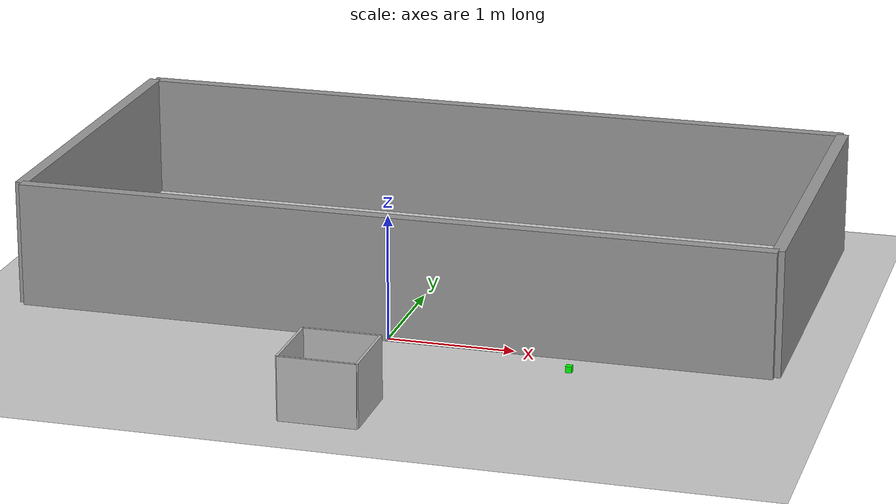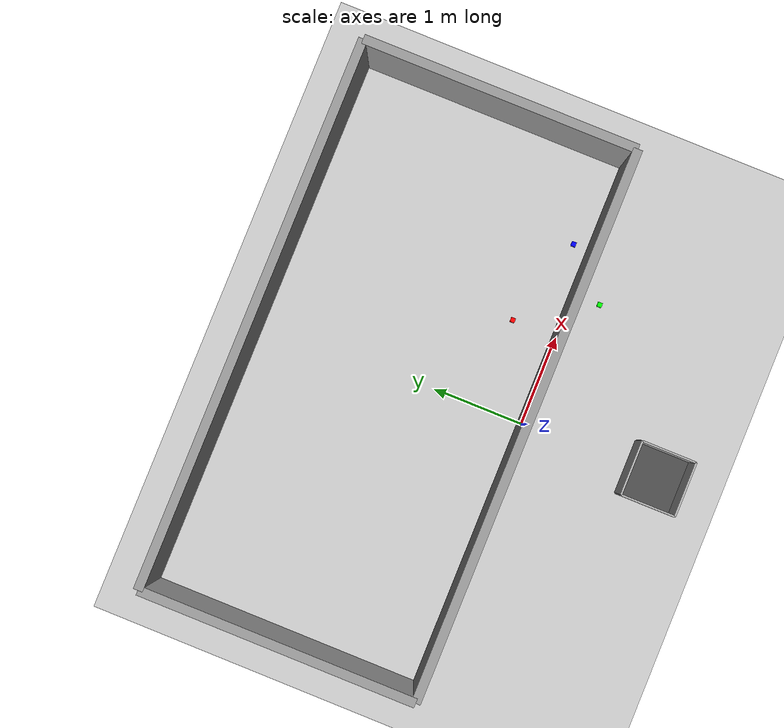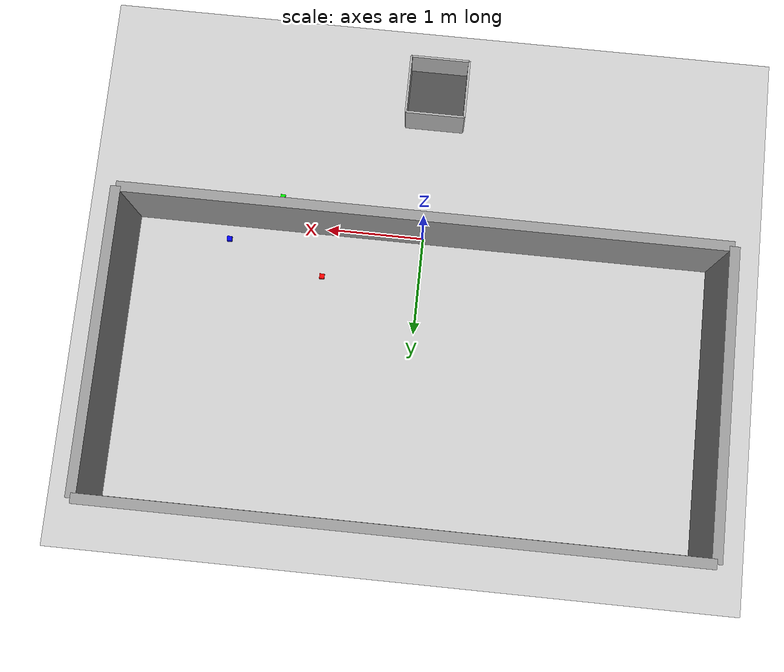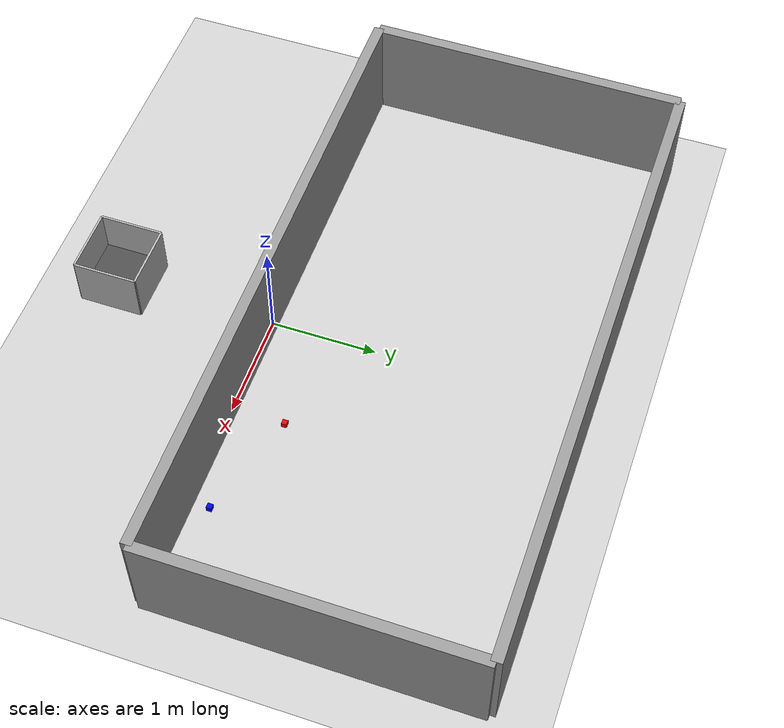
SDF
<?xml version="1.0"?>
<sdf version="1.7">
  <world name="maze_world">
    <gravity>0 0 -9.81</gravity>
    <magnetic_field>6.0e-6 2.3e-5 -4.2e-5</magnetic_field>
    <atmosphere type="adiabatic"/>
    <scene>
      <ambient>0.4 0.4 0.4 1</ambient>
      <background>0.7 0.7 0.7 1</background>
      <shadows>true</shadows>
    </scene>

    <include>
      <uri>model://ground_plane</uri>
    </include>

    <include>
      <uri>model://sun</uri>
    </include>

    <!-- Simple maze walls -->
    <model name="maze_wall_1">
      <static>true</static>
      <pose>0 0 0.5 0 0 0</pose>
      <link name="wall">
        <collision name="collision">
          <geometry>
            <box>
              <size>6 0.1 1</size>
            </box>
          </geometry>
        </collision>
        <visual name="visual">
          <geometry>
            <box>
              <size>6 0.1 1</size>
            </box>
          </geometry>
          <material>
            <ambient>0.2 0.2 0.2 1</ambient>
            <diffuse>0.6 0.6 0.6 1</diffuse>
          </material>
        </visual>
      </link>
    </model>

    <model name="maze_wall_2">
      <static>true</static>
      <pose>3 1.5 0.5 0 0 1.5708</pose>
      <link name="wall">
        <collision name="collision">
          <geometry>
            <box>
              <size>3 0.1 1</size>
            </box>
          </geometry>
        </collision>
        <visual name="visual">
          <geometry>
            <box>
              <size>3 0.1 1</size>
            </box>
          </geometry>
          <material>
            <ambient>0.2 0.2 0.2 1</ambient>
            <diffuse>0.6 0.6 0.6 1</diffuse>
          </material>
        </visual>
      </link>
    </model>

    <model name="maze_wall_3">
      <static>true</static>
      <pose>0 3 0.5 0 0 0</pose>
      <link name="wall">
        <collision name="collision">
          <geometry>
            <box>
              <size>6 0.1 1</size>
            </box>
          </geometry>
        </collision>
        <visual name="visual">
          <geometry>
            <box>
              <size>6 0.1 1</size>
            </box>
          </geometry>
          <material>
            <ambient>0.2 0.2 0.2 1</ambient>
            <diffuse>0.6 0.6 0.6 1</diffuse>
          </material>
        </visual>
      </link>
    </model>

    <model name="maze_wall_4">
      <static>true</static>
      <pose>-3 1.5 0.5 0 0 1.5708</pose>
      <link name="wall">
        <collision name="collision">
          <geometry>
            <box>
              <size>3 0.1 1</size>
            </box>
          </geometry>
        </collision>
        <visual name="visual">
          <geometry>
            <box>
              <size>3 0.1 1</size>
            </box>
          </geometry>
          <material>
            <ambient>0.2 0.2 0.2 1</ambient>
            <diffuse>0.6 0.6 0.6 1</diffuse>
          </material>
        </visual>
      </link>
    </model>

    <!-- Deposit box (open top) at y=-1.5 -->
    <model name="deposit_box_base">
      <static>true</static>
      <pose>0 -1.5 0.05 0 0 0</pose>
      <link name="base">
        <collision name="collision">
          <geometry>
            <box>
              <size>0.6 0.6 0.1</size>
            </box>
          </geometry>
        </collision>
        <visual name="visual">
          <geometry>
            <box>
              <size>0.6 0.6 0.1</size>
            </box>
          </geometry>
          <material>
            <ambient>0.1 0.1 0.1 1</ambient>
            <diffuse>0.3 0.3 0.3 1</diffuse>
          </material>
        </visual>
      </link>
    </model>

    <model name="deposit_box_wall1">
      <static>true</static>
      <pose>0.3 -1.5 0.25 0 0 0</pose>
      <link name="wall">
        <collision name="collision">
          <geometry>
            <box>
              <size>0.02 0.6 0.5</size>
            </box>
          </geometry>
        </collision>
        <visual name="visual">
          <geometry>
            <box>
              <size>0.02 0.6 0.5</size>
            </box>
          </geometry>
        </visual>
      </link>
    </model>
    <model name="deposit_box_wall2">
      <static>true</static>
      <pose>-0.3 -1.5 0.25 0 0 0</pose>
      <link name="wall">
        <collision name="collision">
          <geometry>
            <box>
              <size>0.02 0.6 0.5</size>
            </box>
          </geometry>
        </collision>
        <visual name="visual">
          <geometry>
            <box>
              <size>0.02 0.6 0.5</size>
            </box>
          </geometry>
        </visual>
      </link>
    </model>
    <model name="deposit_box_wall3">
      <static>true</static>
      <pose>0 -1.8 0.25 0 0 1.5708</pose>
      <link name="wall">
        <collision name="collision">
          <geometry>
            <box>
              <size>0.02 0.6 0.5</size>
            </box>
          </geometry>
        </collision>
        <visual name="visual">
          <geometry>
            <box>
              <size>0.02 0.6 0.5</size>
            </box>
          </geometry>
        </visual>
      </link>
    </model>
    <model name="deposit_box_wall4">
      <static>true</static>
      <pose>0 -1.2 0.25 0 0 1.5708</pose>
      <link name="wall">
        <collision name="collision">
          <geometry>
            <box>
              <size>0.02 0.6 0.5</size>
            </box>
          </geometry>
        </collision>
        <visual name="visual">
          <geometry>
            <box>
              <size>0.02 0.6 0.5</size>
            </box>
          </geometry>
        </visual>
      </link>
    </model>

    <!-- Objects to pick -->
    <model name="object1">
      <pose>1.0 0.5 0.025 0 0 0</pose>
      <link name="link">
        <inertial>
          <mass>0.05</mass>
          <inertia>
            <ixx>1e-4</ixx>
            <iyy>1e-4</iyy>
            <izz>1e-4</izz>
            <ixy>0</ixy>
            <ixz>0</ixz>
            <iyz>0</iyz>
          </inertia>
        </inertial>
        <collision name="collision">
          <geometry>
            <box>
              <size>0.05 0.05 0.05</size>
            </box>
          </geometry>
        </collision>
        <visual name="visual">
          <geometry>
            <box>
              <size>0.05 0.05 0.05</size>
            </box>
          </geometry>
          <material>
            <diffuse>1 0 0 1</diffuse>
          </material>
        </visual>
      </link>
    </model>

    <model name="object2">
      <pose>1.5 -0.3 0.025 0 0 0</pose>
      <link name="link">
        <inertial>
          <mass>0.05</mass>
          <inertia>
            <ixx>1e-4</ixx>
            <iyy>1e-4</iyy>
            <izz>1e-4</izz>
            <ixy>0</ixy>
            <ixz>0</ixz>
            <iyz>0</iyz>
          </inertia>
        </inertial>
        <collision name="collision">
          <geometry>
            <box>
              <size>0.05 0.05 0.05</size>
            </box>
          </geometry>
        </collision>
        <visual name="visual">
          <geometry>
            <box>
              <size>0.05 0.05 0.05</size>
            </box>
          </geometry>
          <material>
            <diffuse>0 1 0 1</diffuse>
          </material>
        </visual>
      </link>
    </model>

    <model name="object3">
      <pose>2.0 0.2 0.025 0 0 0</pose>
      <link name="link">
        <inertial>
          <mass>0.05</mass>
          <inertia>
            <ixx>1e-4</ixx>
            <iyy>1e-4</iyy>
            <izz>1e-4</izz>
            <ixy>0</ixy>
            <ixz>0</ixz>
            <iyz>0</iyz>
          </inertia>
        </inertial>
        <collision name="collision">
          <geometry>
            <box>
              <size>0.05 0.05 0.05</size>
            </box>
          </geometry>
        </collision>
        <visual name="visual">
          <geometry>
            <box>
              <size>0.05 0.05 0.05</size>
            </box>
          </geometry>
          <material>
            <diffuse>0 0 1 1</diffuse>
          </material>
        </visual>
      </link>
    </model>

  </world>
</sdf>
